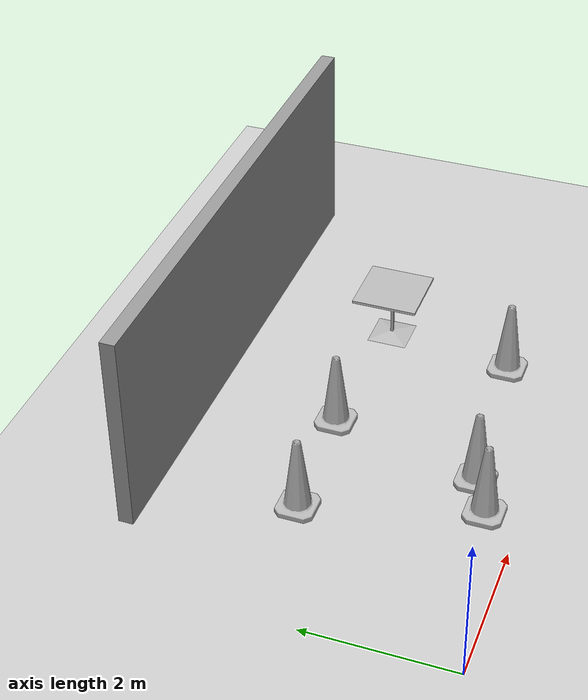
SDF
<sdf version="1.7">
 <world name="default">
  <light name="sun" type="directional">
   <pose>0 0 10 0 -0 0</pose>
   <diffuse>0.8 0.8 0.8 1</diffuse>
   <specular>0.2 0.2 0.2 1</specular>
   <attenuation>
    <range>1000</range>
    <constant>0.9</constant>
    <linear>0.01</linear>
    <quadratic>0.001</quadratic>
   </attenuation>
   <direction>-0.5 0.1 -0.9</direction>
   <spot><inner_angle>0</inner_angle><outer_angle>0</outer_angle><falloff>0</falloff></spot>
  </light>
  <model name="ground_plane">
   <static>1</static>
   <link name="link">
    <collision name="collision">
     <geometry><plane><normal>0 0 1</normal><size>100 100</size></plane></geometry>
     <surface>
      <contact><collide_bitmask>65535</collide_bitmask></contact>
      <friction><ode><mu>100</mu><mu2>50</mu2></ode></friction>
     </surface>
    </collision>
    <visual name="visual">
     <cast_shadows>0</cast_shadows>
     <geometry><plane><normal>0 0 1</normal><size>100 100</size></plane></geometry>
     <material>
      <script><uri>file://media/materials/scripts/gazebo.material</uri><name>Gazebo/Grey</name></script>
     </material>
    </visual>
   </link>
  </model>
  <gravity>0 0 -9.8</gravity>
  <magnetic_field>6e-06 2.3e-05 -4.2e-05</magnetic_field>
  <atmosphere type="adiabatic"/>
  <physics type="ode">
   <max_step_size>0.001</max_step_size>
   <real_time_factor>1</real_time_factor>
   <real_time_update_rate>1000</real_time_update_rate>
  </physics>
  <scene><ambient>0.4 0.4 0.4 1</ambient><background>0.7 0.7 0.7 1</background><shadows>1</shadows></scene>
  <audio><device>default</device></audio>
  <spherical_coordinates>
   <surface_model>EARTH_WGS84</surface_model>
   <latitude_deg>0</latitude_deg>
   <longitude_deg>0</longitude_deg>
   <elevation>0</elevation>
   <heading_deg>0</heading_deg>
  </spherical_coordinates>
  <model name="Construction Cone">
   <link name="link">
    <collision name="collision">
     <geometry>
      <mesh><scale>10 10 10</scale><uri>model://construction_cone/meshes/construction_cone.dae</uri></mesh>
     </geometry>
    </collision>
    <visual name="visual">
     <geometry>
      <mesh><scale>10 10 10</scale><uri>model://construction_cone/meshes/construction_cone.dae</uri></mesh>
     </geometry>
    </visual>
    <inertial>
     <inertia><ixx>1</ixx><ixy>0</ixy><ixz>0</ixz><iyy>1</iyy><iyz>0</iyz><izz>1</izz></inertia>
     <mass>1</mass>
    </inertial>
   </link>
   <pose>2.59012 0.460535 0 -0 -0 -0</pose>
  </model>
  <model name="Construction Cone_clone_0">
   <link name="link">
    <collision name="collision">
     <geometry>
      <mesh><scale>10 10 10</scale><uri>model://construction_cone/meshes/construction_cone.dae</uri></mesh>
     </geometry>
    </collision>
    <visual name="visual">
     <geometry>
      <mesh><scale>10 10 10</scale><uri>model://construction_cone/meshes/construction_cone.dae</uri></mesh>
     </geometry>
    </visual>
    <inertial>
     <inertia><ixx>1</ixx><ixy>0</ixy><ixz>0</ixz><iyy>1</iyy><iyz>0</iyz><izz>1</izz></inertia>
     <mass>1</mass>
    </inertial>
   </link>
   <pose>1.92109 2.70533 -0 0 -1e-06 0</pose>
  </model>
  <model name="Construction Cone_clone_1">
   <link name="link">
    <collision name="collision">
     <geometry>
      <mesh><scale>10 10 10</scale><uri>model://construction_cone/meshes/construction_cone.dae</uri></mesh>
     </geometry>
    </collision>
    <visual name="visual">
     <geometry>
      <mesh><scale>10 10 10</scale><uri>model://construction_cone/meshes/construction_cone.dae</uri></mesh>
     </geometry>
    </visual>
    <inertial>
     <inertia><ixx>1</ixx><ixy>0</ixy><ixz>0</ixz><iyy>1</iyy><iyz>0</iyz><izz>1</izz></inertia>
     <mass>1</mass>
    </inertial>
   </link>
   <pose>3.64729 2.80665 -0 0 -0 0</pose>
  </model>
  <model name="Construction Cone_clone_2">
   <link name="link">
    <collision name="collision">
     <geometry>
      <mesh><scale>10 10 10</scale><uri>model://construction_cone/meshes/construction_cone.dae</uri></mesh>
     </geometry>
    </collision>
    <visual name="visual">
     <geometry>
      <mesh><scale>10 10 10</scale><uri>model://construction_cone/meshes/construction_cone.dae</uri></mesh>
     </geometry>
    </visual>
    <inertial>
     <inertia><ixx>1</ixx><ixy>0</ixy><ixz>0</ixz><iyy>1</iyy><iyz>0</iyz><izz>1</izz></inertia>
     <mass>1</mass>
    </inertial>
   </link>
   <pose>5.51052 0.923407 -0 0 -1e-06 0</pose>
  </model>
  <model name="cafe_table">
   <static>1</static>
   <link name="link">
    <collision name="surface">
     <pose>0 0 0.755 0 -0 0</pose>
     <geometry><box><size>0.913 0.913 0.04</size></box></geometry>
    </collision>
    <collision name="column">
     <pose>0 0 0.37 0 -0 0</pose>
     <geometry><box><size>0.042 0.042 0.74</size></box></geometry>
    </collision>
    <collision name="base">
     <pose>0 0 0.02 0 -0 0</pose>
     <geometry><box><size>0.56 0.56 0.04</size></box></geometry>
    </collision>
    <visual name="visual">
     <geometry><mesh><uri>model://cafe_table/meshes/cafe_table.dae</uri></mesh></geometry>
    </visual>
   </link>
   <pose>5.78149 2.70031 0 0 -0 0</pose>
  </model>
  <model name="grey_wall">
   <static>1</static>
   <link name="link">
    <pose>0 0 1.4 0 -0 0</pose>
    <collision name="collision"><geometry><box><size>7.5 0.2 2.8</size></box></geometry></collision>
    <visual name="visual">
     <cast_shadows>0</cast_shadows>
     <geometry><box><size>7.5 0.2 2.8</size></box></geometry>
     <material>
      <script>
       <uri>model://grey_wall/materials/scripts</uri>
       <uri>model://grey_wall/materials/textures</uri>
       <name>vrc/grey_wall</name>
      </script>
     </material>
    </visual>
   </link>
   <pose>4.70299 4.62663 0 0 -0 0</pose>
  </model>
  <model name="Construction Cone_clone">
   <link name="link">
    <collision name="collision">
     <geometry>
      <mesh><scale>10 10 10</scale><uri>model://construction_cone/meshes/construction_cone.dae</uri></mesh>
     </geometry>
    </collision>
    <visual name="visual">
     <geometry>
      <mesh><scale>10 10 10</scale><uri>model://construction_cone/meshes/construction_cone.dae</uri></mesh>
     </geometry>
    </visual>
    <inertial>
     <inertia><ixx>1</ixx><ixy>0</ixy><ixz>0</ixz><iyy>1</iyy><iyz>0</iyz><izz>1</izz></inertia>
     <mass>1</mass>
    </inertial>
   </link>
   <pose>3.14112 0.726252 -0 0 -1e-06 0</pose>
  </model>
 </world>
</sdf>
